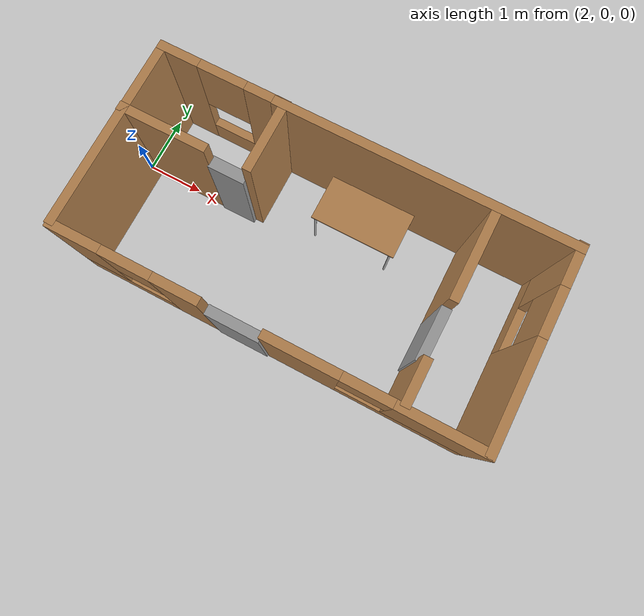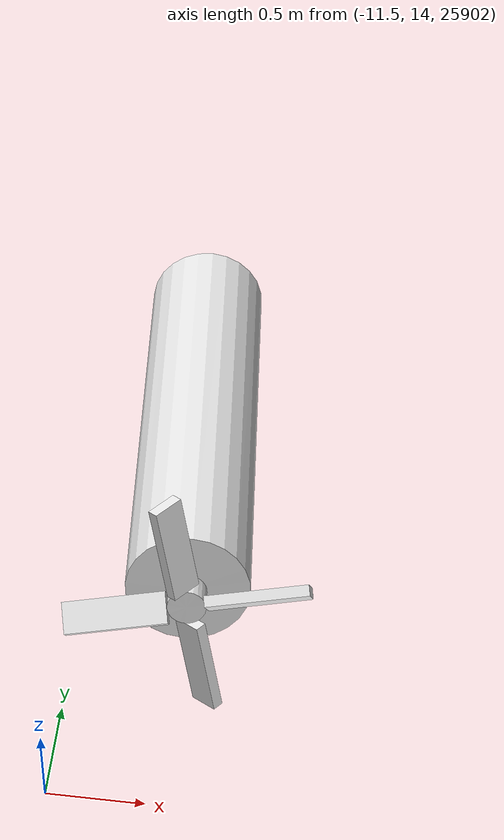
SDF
<sdf version="1.7">
 <world name="default">
  <light name="sun" type="directional">
   <pose>0 0 10 0 -0 0</pose>
   <diffuse>0.8 0.8 0.8 1</diffuse>
   <specular>0.2 0.2 0.2 1</specular>
   <attenuation>
    <range>1000</range>
    <constant>0.9</constant>
    <linear>0.01</linear>
    <quadratic>0.001</quadratic>
   </attenuation>
   <direction>-0.5 0.1 -0.9</direction>
   <spot><inner_angle>0</inner_angle><outer_angle>0</outer_angle><falloff>0</falloff></spot>
  </light>
  <model name="ground_plane">
   <static>1</static>
   <link name="link">
    <collision name="collision">
     <geometry><plane><normal>0 0 1</normal><size>100 100</size></plane></geometry>
     <surface>
      <contact><collide_bitmask>65535</collide_bitmask></contact>
      <friction><ode><mu>100</mu><mu2>50</mu2></ode></friction>
     </surface>
    </collision>
    <visual name="visual">
     <cast_shadows>0</cast_shadows>
     <geometry><plane><normal>0 0 1</normal><size>100 100</size></plane></geometry>
     <material>
      <script><uri>file://media/materials/scripts/gazebo.material</uri><name>Gazebo/Grey</name></script>
     </material>
    </visual>
   </link>
  </model>
  <gravity>0 0 -9.8</gravity>
  <magnetic_field>6e-06 2.3e-05 -4.2e-05</magnetic_field>
  <atmosphere type="adiabatic"/>
  <physics type="ode">
   <max_step_size>0.001</max_step_size>
   <real_time_factor>1</real_time_factor>
   <real_time_update_rate>1000</real_time_update_rate>
  </physics>
  <scene><ambient>0.4 0.4 0.4 1</ambient><background>0.7 0.7 0.7 1</background><shadows>1</shadows></scene>
  <spherical_coordinates>
   <surface_model>EARTH_WGS84</surface_model>
   <latitude_deg>0</latitude_deg>
   <longitude_deg>0</longitude_deg>
   <elevation>0</elevation>
   <heading_deg>0</heading_deg>
  </spherical_coordinates>
  <model name="metal_peg">
   <link name="link">
    <pose>0 0 0.031 0 -0 0</pose>
    <inertial>
     <mass>0.0121</mass>
     <inertia>
      <ixx>3.90898e-06</ixx>
      <ixy>0</ixy>
      <ixz>0</ixz>
      <iyy>3.90898e-06</iyy>
      <iyz>0</iyz>
      <izz>6.58845e-08</izz>
     </inertia>
    </inertial>
    <collision name="collision">
     <geometry><cylinder><radius>0.0033</radius><length>0.062</length></cylinder></geometry>
     <surface>
      <contact>
       <poissons_ratio>0.305</poissons_ratio>
       <elastic_modulus>2e+11</elastic_modulus>
       <ode><kp>100000</kp><kd>100</kd><max_vel>100</max_vel><min_depth>0.001</min_depth></ode>
      </contact>
      <friction>
       <torsional>
        <coefficient>1</coefficient>
        <use_patch_radius>0</use_patch_radius>
        <surface_radius>0.01</surface_radius>
       </torsional>
      </friction>
     </surface>
    </collision>
    <visual name="visual">
     <geometry><cylinder><radius>0.0033</radius><length>0.062</length></cylinder></geometry>
     <material>
      <script><uri>file://media/materials/scripts/gazebo.material</uri><name>Gazebo/Grey</name></script>
     </material>
    </visual>
   </link>
   <pose>-9.43665 2.59482 -0.001 -5e-06 5e-06 -1e-06</pose>
  </model>
  <model name="m">
   <pose>4.51881 -0.388982 0 0 -0 0</pose>
   <link name="Door_0">
    <collision name="Door_0_Collision">
     <geometry><box><size>0.9 0.17 2</size></box></geometry>
     <pose>0 0 1 0 -0 0</pose>
    </collision>
    <visual name="Door_0_Visual">
     <pose>0 0 1 0 -0 0</pose>
     <geometry><box><size>0.9 0.17 2</size></box></geometry>
     <material>
      <script><uri>file://media/materials/scripts/gazebo.material</uri><name>Gazebo/Grey</name></script>
     </material>
    </visual>
    <pose>0.545108 -1.5871 0 0 -0 0</pose>
   </link>
   <link name="Door_1">
    <collision name="Door_1_Collision">
     <geometry><box><size>0.621739 0.2 2</size></box></geometry>
     <pose>0 0 1 0 -0 0</pose>
    </collision>
    <visual name="Door_1_Visual">
     <pose>0 0 1 0 -0 0</pose>
     <geometry><box><size>0.621739 0.2 2</size></box></geometry>
     <material>
      <script><uri>file://media/materials/scripts/gazebo.material</uri><name>Gazebo/Grey</name></script>
     </material>
    </visual>
    <pose>-0.668231 0.427243 0 0 -0 0</pose>
   </link>
   <link name="Door_2">
    <collision name="Door_2_Collision">
     <geometry><box><size>0.9 0.17 2</size></box></geometry>
     <pose>0 0 1 0 -0 0</pose>
    </collision>
    <visual name="Door_2_Visual">
     <pose>0 0 1 0 -0 0</pose>
     <geometry><box><size>0.9 0.17 2</size></box></geometry>
     <material>
      <script><uri>file://media/materials/scripts/gazebo.material</uri><name>Gazebo/Grey</name></script>
     </material>
    </visual>
    <pose>3.16512 -0.403588 0 0 -0 -1.57991</pose>
   </link>
   <link name="Wall_0">
    <pose>2.7688 -1.57102 0 0 -0 0</pose>
    <visual name="Wall_0_Visual_0">
     <pose>-1.13265 0 1.25 0 -0 0</pose>
     <geometry><box><size>1.2347 0.15 2.5</size></box></geometry>
     <material>
      <script><uri>file://media/materials/scripts/gazebo.material</uri><name>Gazebo/Wood</name></script>
      <ambient>1 1 1 1</ambient>
     </material>
     <meta><layer>0</layer></meta>
    </visual>
    <collision name="Wall_0_Collision_0">
     <geometry><box><size>1.2347 0.15 2.5</size></box></geometry>
     <pose>-1.13265 0 1.25 0 -0 0</pose>
    </collision>
    <visual name="Wall_0_Visual_1">
     <pose>0.617352 0 0.3 0 -0 0</pose>
     <geometry><box><size>2.2653 0.15 0.6</size></box></geometry>
     <material>
      <script><uri>file://media/materials/scripts/gazebo.material</uri><name>Gazebo/Wood</name></script>
      <ambient>1 1 1 1</ambient>
     </material>
     <meta><layer>0</layer></meta>
    </visual>
    <collision name="Wall_0_Collision_1">
     <geometry><box><size>2.2653 0.15 0.6</size></box></geometry>
     <pose>0.617352 0 0.3 0 -0 0</pose>
    </collision>
    <visual name="Wall_0_Visual_2">
     <pose>1.01735 0 1.55 0 -0 0</pose>
     <geometry><box><size>1.4653 0.15 1.9</size></box></geometry>
     <material>
      <script><uri>file://media/materials/scripts/gazebo.material</uri><name>Gazebo/Wood</name></script>
      <ambient>1 1 1 1</ambient>
     </material>
     <meta><layer>0</layer></meta>
    </visual>
    <collision name="Wall_0_Collision_2">
     <geometry><box><size>1.4653 0.15 1.9</size></box></geometry>
     <pose>1.01735 0 1.55 0 -0 0</pose>
    </collision>
    <visual name="Wall_0_Visual_3">
     <pose>-0.115295 0 1.95 0 -0 0</pose>
     <geometry><box><size>0.8 0.15 1.1</size></box></geometry>
     <material>
      <script><uri>file://media/materials/scripts/gazebo.material</uri><name>Gazebo/Wood</name></script>
      <ambient>1 1 1 1</ambient>
     </material>
     <meta><layer>0</layer></meta>
    </visual>
    <collision name="Wall_0_Collision_3">
     <geometry><box><size>0.8 0.15 1.1</size></box></geometry>
     <pose>-0.115295 0 1.95 0 -0 0</pose>
    </collision>
   </link>
   <link name="Wall_10">
    <collision name="Wall_10_Collision">
     <geometry><box><size>3.25 0.15 2.5</size></box></geometry>
     <pose>0 0 1.25 0 -0 0</pose>
    </collision>
    <visual name="Wall_10_Visual">
     <pose>0 0 1.25 0 -0 0</pose>
     <geometry><box><size>3.25 0.15 2.5</size></box></geometry>
     <material>
      <script><uri>file://media/materials/scripts/gazebo.material</uri><name>Gazebo/Wood</name></script>
      <ambient>1 1 1 1</ambient>
     </material>
     <meta><layer>0</layer></meta>
    </visual>
    <pose>-2.38127 0.022895 0 0 -0 -1.5708</pose>
   </link>
   <link name="Wall_12">
    <collision name="Wall_12_Collision">
     <geometry><box><size>1.5 0.15 2.5</size></box></geometry>
     <pose>0 0 1.25 0 -0 0</pose>
    </collision>
    <visual name="Wall_12_Visual">
     <pose>0 0 1.25 0 -0 0</pose>
     <geometry><box><size>1.5 0.15 2.5</size></box></geometry>
     <material>
      <script><uri>file://media/materials/scripts/gazebo.material</uri><name>Gazebo/Wood</name></script>
      <ambient>1 1 1 1</ambient>
     </material>
     <meta><layer>0</layer></meta>
    </visual>
    <pose>-1.71714 0.427243 0 0 -0 3.14159</pose>
   </link>
   <link name="Wall_14">
    <pose>4.4438 0.005217 0 0 -0 1.5708</pose>
    <visual name="Wall_14_Visual_0">
     <pose>-0.757789 0 1.25 0 -0 0</pose>
     <geometry><box><size>1.78689 0.15 2.5</size></box></geometry>
     <material>
      <script><uri>file://media/materials/scripts/gazebo.material</uri><name>Gazebo/Wood</name></script>
      <ambient>1 1 1 1</ambient>
     </material>
     <meta><layer>0</layer></meta>
    </visual>
    <collision name="Wall_14_Collision_0">
     <geometry><box><size>1.78689 0.15 2.5</size></box></geometry>
     <pose>-0.757789 0 1.25 0 -0 0</pose>
    </collision>
    <visual name="Wall_14_Visual_1">
     <pose>0.893446 0 0.25 0 -0 0</pose>
     <geometry><box><size>1.51558 0.15 0.5</size></box></geometry>
     <material>
      <script><uri>file://media/materials/scripts/gazebo.material</uri><name>Gazebo/Wood</name></script>
      <ambient>1 1 1 1</ambient>
     </material>
     <meta><layer>0</layer></meta>
    </visual>
    <collision name="Wall_14_Collision_1">
     <geometry><box><size>1.51558 0.15 0.5</size></box></geometry>
     <pose>0.893446 0 0.25 0 -0 0</pose>
    </collision>
    <visual name="Wall_14_Visual_2">
     <pose>1.29345 0 1.5 0 -0 0</pose>
     <geometry><box><size>0.715577 0.15 2</size></box></geometry>
     <material>
      <script><uri>file://media/materials/scripts/gazebo.material</uri><name>Gazebo/Wood</name></script>
      <ambient>1 1 1 1</ambient>
     </material>
     <meta><layer>0</layer></meta>
    </visual>
    <collision name="Wall_14_Collision_2">
     <geometry><box><size>0.715577 0.15 2</size></box></geometry>
     <pose>1.29345 0 1.5 0 -0 0</pose>
    </collision>
    <visual name="Wall_14_Visual_3">
     <pose>0.535658 0 1.9 0 -0 0</pose>
     <geometry><box><size>0.8 0.15 1.2</size></box></geometry>
     <material>
      <script><uri>file://media/materials/scripts/gazebo.material</uri><name>Gazebo/Wood</name></script>
      <ambient>1 1 1 1</ambient>
     </material>
     <meta><layer>0</layer></meta>
    </visual>
    <collision name="Wall_14_Collision_3">
     <geometry><box><size>0.8 0.15 1.2</size></box></geometry>
     <pose>0.535658 0 1.9 0 -0 0</pose>
    </collision>
   </link>
   <link name="Wall_15">
    <collision name="Wall_15_Collision">
     <geometry><box><size>5 0.15 2.5</size></box></geometry>
     <pose>0 0 1.25 0 -0 0</pose>
    </collision>
    <visual name="Wall_15_Visual">
     <pose>0 0 1.25 0 -0 0</pose>
     <geometry><box><size>5 0.15 2.5</size></box></geometry>
     <material>
      <script><uri>file://media/materials/scripts/gazebo.material</uri><name>Gazebo/Wood</name></script>
      <ambient>1 1 1 1</ambient>
     </material>
     <meta><layer>0</layer></meta>
    </visual>
    <pose>2.0188 1.56396 0 0 -0 3.14159</pose>
   </link>
   <link name="Wall_17">
    <collision name="Wall_17_Collision">
     <geometry><box><size>1.5 0.15 2.5</size></box></geometry>
     <pose>0 0 1.25 0 -0 0</pose>
    </collision>
    <visual name="Wall_17_Visual">
     <pose>0 0 1.25 0 -0 0</pose>
     <geometry><box><size>1.5 0.15 2.5</size></box></geometry>
     <material>
      <script><uri>file://media/materials/scripts/gazebo.material</uri><name>Gazebo/Wood</name></script>
      <ambient>1 1 1 1</ambient>
     </material>
     <meta><layer>0</layer></meta>
    </visual>
    <pose>3.16512 0.792848 0 0 -0 -1.5708</pose>
   </link>
   <link name="Wall_19">
    <collision name="Wall_19_Collision">
     <geometry><box><size>0.75 0.15 2.5</size></box></geometry>
     <pose>0 0 1.25 0 -0 0</pose>
    </collision>
    <visual name="Wall_19_Visual">
     <pose>0 0 1.25 0 -0 0</pose>
     <geometry><box><size>0.75 0.15 2.5</size></box></geometry>
     <material>
      <script><uri>file://media/materials/scripts/gazebo.material</uri><name>Gazebo/Wood</name></script>
      <ambient>1 1 1 1</ambient>
     </material>
     <meta><layer>0</layer></meta>
    </visual>
    <pose>3.18261 -1.17582 0 0 -0 -1.5708</pose>
   </link>
   <link name="Wall_2">
    <pose>-1.18236 -1.58145 0 0 -0 3.14159</pose>
    <visual name="Wall_2_Visual_0">
     <pose>-0.860545 0 1.25 0 -0 0</pose>
     <geometry><box><size>0.778909 0.15 2.5</size></box></geometry>
     <material>
      <script><uri>file://media/materials/scripts/gazebo.material</uri><name>Gazebo/Wood</name></script>
      <ambient>1 1 1 1</ambient>
     </material>
     <meta><layer>0</layer></meta>
    </visual>
    <collision name="Wall_2_Collision_0">
     <geometry><box><size>0.778909 0.15 2.5</size></box></geometry>
     <pose>-0.860545 0 1.25 0 -0 0</pose>
    </collision>
    <visual name="Wall_2_Visual_1">
     <pose>0.389455 0 0.3 0 -0 0</pose>
     <geometry><box><size>1.72109 0.15 0.6</size></box></geometry>
     <material>
      <script><uri>file://media/materials/scripts/gazebo.material</uri><name>Gazebo/Wood</name></script>
      <ambient>1 1 1 1</ambient>
     </material>
     <meta><layer>0</layer></meta>
    </visual>
    <collision name="Wall_2_Collision_1">
     <geometry><box><size>1.72109 0.15 0.6</size></box></geometry>
     <pose>0.389455 0 0.3 0 -0 0</pose>
    </collision>
    <visual name="Wall_2_Visual_2">
     <pose>0.809455 0 1.55 0 -0 0</pose>
     <geometry><box><size>0.881091 0.15 1.9</size></box></geometry>
     <material>
      <script><uri>file://media/materials/scripts/gazebo.material</uri><name>Gazebo/Wood</name></script>
      <ambient>1 1 1 1</ambient>
     </material>
     <meta><layer>0</layer></meta>
    </visual>
    <collision name="Wall_2_Collision_2">
     <geometry><box><size>0.881091 0.15 1.9</size></box></geometry>
     <pose>0.809455 0 1.55 0 -0 0</pose>
    </collision>
    <visual name="Wall_2_Visual_3">
     <pose>-0.051091 0 1.95 0 -0 0</pose>
     <geometry><box><size>0.84 0.15 1.1</size></box></geometry>
     <material>
      <script><uri>file://media/materials/scripts/gazebo.material</uri><name>Gazebo/Wood</name></script>
      <ambient>1 1 1 1</ambient>
     </material>
     <meta><layer>0</layer></meta>
    </visual>
    <collision name="Wall_2_Collision_3">
     <geometry><box><size>0.84 0.15 1.1</size></box></geometry>
     <pose>-0.051091 0 1.95 0 -0 0</pose>
    </collision>
   </link>
   <link name="Wall_5">
    <pose>-1.33127 1.57289 0 0 -0 0</pose>
    <visual name="Wall_5_Visual_0">
     <pose>-0.770521 0 1.25 0 -0 0</pose>
     <geometry><box><size>0.708959 0.15 2.5</size></box></geometry>
     <material>
      <script><uri>file://media/materials/scripts/gazebo.material</uri><name>Gazebo/Wood</name></script>
      <ambient>1 1 1 1</ambient>
     </material>
     <meta><layer>0</layer></meta>
    </visual>
    <collision name="Wall_5_Collision_0">
     <geometry><box><size>0.708959 0.15 2.5</size></box></geometry>
     <pose>-0.770521 0 1.25 0 -0 0</pose>
    </collision>
    <visual name="Wall_5_Visual_1">
     <pose>0.354479 0 0.25 0 -0 0</pose>
     <geometry><box><size>1.54104 0.15 0.5</size></box></geometry>
     <material>
      <script><uri>file://media/materials/scripts/gazebo.material</uri><name>Gazebo/Wood</name></script>
      <ambient>1 1 1 1</ambient>
     </material>
     <meta><layer>0</layer></meta>
    </visual>
    <collision name="Wall_5_Collision_1">
     <geometry><box><size>1.54104 0.15 0.5</size></box></geometry>
     <pose>0.354479 0 0.25 0 -0 0</pose>
    </collision>
    <visual name="Wall_5_Visual_2">
     <pose>0.754479 0 1.5 0 -0 0</pose>
     <geometry><box><size>0.741041 0.15 2</size></box></geometry>
     <material>
      <script><uri>file://media/materials/scripts/gazebo.material</uri><name>Gazebo/Wood</name></script>
      <ambient>1 1 1 1</ambient>
     </material>
     <meta><layer>0</layer></meta>
    </visual>
    <collision name="Wall_5_Collision_2">
     <geometry><box><size>0.741041 0.15 2</size></box></geometry>
     <pose>0.754479 0 1.5 0 -0 0</pose>
    </collision>
    <visual name="Wall_5_Visual_3">
     <pose>-0.016041 0 1.9 0 -0 0</pose>
     <geometry><box><size>0.8 0.15 1.2</size></box></geometry>
     <material>
      <script><uri>file://media/materials/scripts/gazebo.material</uri><name>Gazebo/Wood</name></script>
      <ambient>1 1 1 1</ambient>
     </material>
     <meta><layer>0</layer></meta>
    </visual>
    <collision name="Wall_5_Collision_3">
     <geometry><box><size>0.8 0.15 1.2</size></box></geometry>
     <pose>-0.016041 0 1.9 0 -0 0</pose>
    </collision>
   </link>
   <link name="Wall_6">
    <collision name="Wall_6_Collision">
     <geometry><box><size>1.25 0.15 2.5</size></box></geometry>
     <pose>0 0 1.25 0 -0 0</pose>
    </collision>
    <visual name="Wall_6_Visual">
     <pose>0 0 1.25 0 -0 0</pose>
     <geometry><box><size>1.25 0.15 2.5</size></box></geometry>
     <material>
      <script><uri>file://media/materials/scripts/gazebo.material</uri><name>Gazebo/Wood</name></script>
      <ambient>1 1 1 1</ambient>
     </material>
     <meta><layer>0</layer></meta>
    </visual>
    <pose>-0.28997 1.0229 0 0 -0 -1.5708</pose>
   </link>
   <static>1</static>
  </model>
  <model name="table">
   <static>1</static>
   <link name="link">
    <collision name="surface">
     <pose>0 0 1 0 -0 0</pose>
     <geometry><box><size>1.5 0.8 0.03</size></box></geometry>
     <surface><friction><ode><mu>0.6</mu><mu2>0.6</mu2></ode></friction></surface>
    </collision>
    <visual name="visual1">
     <pose>0 0 1 0 -0 0</pose>
     <geometry><box><size>1.5 0.8 0.03</size></box></geometry>
     <material>
      <script><uri>file://media/materials/scripts/gazebo.material</uri><name>Gazebo/Wood</name></script>
     </material>
    </visual>
    <collision name="front_left_leg">
     <pose>0.68 0.38 0.5 0 -0 0</pose>
     <geometry><cylinder><radius>0.02</radius><length>1</length></cylinder></geometry>
    </collision>
    <visual name="front_left_leg">
     <pose>0.68 0.38 0.5 0 -0 0</pose>
     <geometry><cylinder><radius>0.02</radius><length>1</length></cylinder></geometry>
     <material>
      <script><uri>file://media/materials/scripts/gazebo.material</uri><name>Gazebo/Grey</name></script>
     </material>
    </visual>
    <collision name="front_right_leg">
     <pose>0.68 -0.38 0.5 0 -0 0</pose>
     <geometry><cylinder><radius>0.02</radius><length>1</length></cylinder></geometry>
    </collision>
    <visual name="front_right_leg">
     <pose>0.68 -0.38 0.5 0 -0 0</pose>
     <geometry><cylinder><radius>0.02</radius><length>1</length></cylinder></geometry>
     <material>
      <script><uri>file://media/materials/scripts/gazebo.material</uri><name>Gazebo/Grey</name></script>
     </material>
    </visual>
    <collision name="back_right_leg">
     <pose>-0.68 -0.38 0.5 0 -0 0</pose>
     <geometry><cylinder><radius>0.02</radius><length>1</length></cylinder></geometry>
    </collision>
    <visual name="back_right_leg">
     <pose>-0.68 -0.38 0.5 0 -0 0</pose>
     <geometry><cylinder><radius>0.02</radius><length>1</length></cylinder></geometry>
     <material>
      <script><uri>file://media/materials/scripts/gazebo.material</uri><name>Gazebo/Grey</name></script>
     </material>
    </visual>
    <collision name="back_left_leg">
     <pose>-0.68 0.38 0.5 0 -0 0</pose>
     <geometry><cylinder><radius>0.02</radius><length>1</length></cylinder></geometry>
    </collision>
    <visual name="back_left_leg">
     <pose>-0.68 0.38 0.5 0 -0 0</pose>
     <geometry><cylinder><radius>0.02</radius><length>1</length></cylinder></geometry>
     <material>
      <script><uri>file://media/materials/scripts/gazebo.material</uri><name>Gazebo/Grey</name></script>
     </material>
    </visual>
   </link>
   <pose>5.91834 0.624892 0 0 -0 0</pose>
  </model>
  <model name="submarine_buoyant">
   <pose>-10.8777 14.7821 25903 1.29093 -0.168997 0.140267</pose>
   <link name="body">
    <pose>0 0 -1.07935 0 -0 0</pose>
    <inertial>
     <mass>367.566</mass>
     <inertia><ixx>215.333</ixx><ixy>0</ixy><ixz>0</ixz><iyy>215.333</iyy><iyz>0</iyz><izz>16.5405</izz></inertia>
    </inertial>
    <visual name="body_visual">
     <geometry><cylinder><radius>0.3</radius><length>2.6</length></cylinder></geometry>
     <material>
      <script><uri>file://media/materials/scripts/gazebo.material</uri><name>Gazebo/White</name></script>
     </material>
    </visual>
    <collision name="body_collision">
     <geometry><cylinder><radius>0.3</radius><length>2.6</length></cylinder></geometry>
    </collision>
    <visual name="spacer_visual">
     <pose>0 0 1.37855 0 -0 0</pose>
     <geometry><cylinder><radius>0.0933402</radius><length>0.127211</length></cylinder></geometry>
     <material>
      <script><uri>file://media/materials/scripts/gazebo.material</uri><name>Gazebo/White</name></script>
     </material>
    </visual>
   </link>
   <link name="propeller">
    <pose>0 0 0.3455 3.14159 -0 0</pose>
    <inertial>
     <mass>8.41041</mass>
     <inertia>
      <ixx>0.177302</ixx>
      <ixy>0</ixy>
      <ixz>0</ixz>
      <iyy>0.177302</iyy>
      <iyz>0</iyz>
      <izz>0.350434</izz>
     </inertia>
    </inertial>
    <visual name="blade1_visual">
     <pose>0.34334 0 0 0.785398 -0 0</pose>
     <geometry><box><size>0.5 0.154178 0.05455</size></box></geometry>
     <material>
      <script><uri>file://media/materials/scripts/gazebo.material</uri><name>Gazebo/White</name></script>
     </material>
    </visual>
    <collision name="blade1_collision">
     <pose>0.34334 0 0 0.785398 -0 0</pose>
     <geometry><box><size>0.5 0.154178 0.05455</size></box></geometry>
    </collision>
    <visual name="blade2_visual">
     <pose>0 0.34334 0 0.785398 0 1.5708</pose>
     <geometry><box><size>0.5 0.154178 0.05455</size></box></geometry>
     <material>
      <script><uri>file://media/materials/scripts/gazebo.material</uri><name>Gazebo/White</name></script>
     </material>
    </visual>
    <collision name="blade2_collision">
     <pose>0 0.34334 0 0.785398 0 1.5708</pose>
     <geometry><box><size>0.5 0.154178 0.05455</size></box></geometry>
    </collision>
    <visual name="blade3_visual">
     <pose>-0.34334 -0 0 -0.785398 0 0</pose>
     <geometry><box><size>0.5 0.154178 0.05455</size></box></geometry>
     <material>
      <script><uri>file://media/materials/scripts/gazebo.material</uri><name>Gazebo/White</name></script>
     </material>
    </visual>
    <collision name="blade3_collision">
     <pose>-0.34334 -0 0 -0.785398 0 0</pose>
     <geometry><box><size>0.5 0.154178 0.05455</size></box></geometry>
    </collision>
    <visual name="blade4_visual">
     <pose>-0 -0.34334 0 -0.785398 -0 1.5708</pose>
     <geometry><box><size>0.5 0.154178 0.05455</size></box></geometry>
     <material>
      <script><uri>file://media/materials/scripts/gazebo.material</uri><name>Gazebo/White</name></script>
     </material>
    </visual>
    <collision name="blade4_collision">
     <pose>-0 -0.34334 0 -0.785398 -0 1.5708</pose>
     <geometry><box><size>0.5 0.154178 0.05455</size></box></geometry>
    </collision>
   </link>
   <joint name="spinning_joint" type="revolute">
    <parent>body</parent>
    <child>propeller</child>
    <axis>
     <xyz expressed_in="__model__">0 0 1</xyz>
     <limit><lower>-1e+12</lower><upper>1e+12</upper><effort>-1</effort><velocity>-1</velocity></limit>
     <dynamics><spring_reference>0</spring_reference><spring_stiffness>0</spring_stiffness></dynamics>
    </axis>
   </joint>
   <plugin name="buoyancy" filename="libBuoyancyPlugin.so"><fluid_density>999.1026</fluid_density></plugin>
  </model>
 </world>
</sdf>
